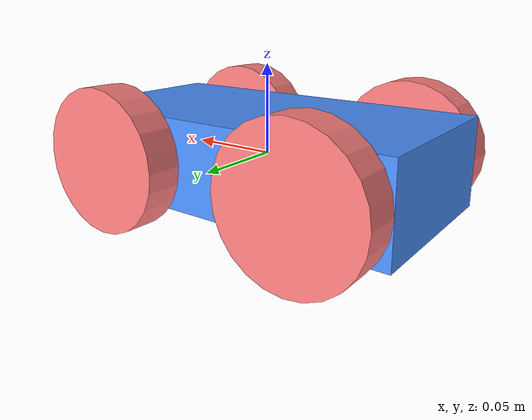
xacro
<?xml version="1.0"?>

<!--
Description: Xacro file that physically describe the Robot that will be interpreted by ROS. It's like a kinematic description of the Robot.
-->

<robot xmlns:xacro="http://www.ros.org/wiki/xacro" name="CleaningRobot">

  <!-- Color Macros: Initialize a pair of colors to be used in the different Robot parts. -->
  <material name="red">
    <color rgba="1.0 0.5 0.5 1.0"/>
  </material>
  <material name="blue">
    <color rgba="0.3 0.57 1. 1."/>
  </material>

  <!-- Body and Wheels Properties -->
  <xacro:property name="body_length" value="0.2" />
  <xacro:property name="body_width" value="0.1" />
  <xacro:property name="body_height" value="0.05" />
  <xacro:property name="ground_offset" value="0.04" />

  <xacro:property name="wheelbase" value="0.1" />
  <xacro:property name="wheel_radius" value="0.04" />
  <xacro:property name="wheel_length" value="0.02" />

  <!-- Base Link Definition -->
  <link name="base_link">
    <visual>
      <origin xyz="0 0 0"/>
      <geometry>
        <box size="${body_length} ${body_width} ${body_height}"/>
      </geometry>
      <material name="blue"/>
    </visual>
    <collision>
        <origin xyz="${wheelbase/2} 0 ${ground_offset+body_height/2}" />
        <geometry>
          <box size="${body_length} ${body_width} ${body_height}"/>
        </geometry>
    </collision>
  </link>

  <!-- FIXED JOINTS-->

  <!-- 1.a) Distance Sensor Left-->
  <link name="left_distance_sensor">
  </link>
  <joint name="base_to_left_distance_sensor" type="fixed">
    <parent link="base_link"/>
    <child link="left_distance_sensor"/>
    <origin xyz="0.1 0.02 0" rpy="0 0 0.3"/>
  </joint>

  <!-- 1.b) Distance Sensor Right-->
  <link name="right_distance_sensor">
  </link>
  <joint name="base_to_right_distance_sensor" type="fixed">
    <parent link="base_link"/>
    <child link="right_distance_sensor"/>
    <origin xyz="0.1 -0.02 0" rpy="0 0 -0.3"/>
  </joint>

  <!-- 2) Rotary Actuator -->
  <link name="rotary_link">
  </link>
  <joint name="linear_to_rotary_link" type="fixed">
    <parent link="linear_link"/>
    <child link="rotary_link"/>
    <origin xyz="0 -0.15 0" rpy="0 0 3.142"/>
  </joint>

  <!-- 3) Lidar -->
  <link name="lidar">
  </link>
  <joint name="base_to_lidar" type="fixed">
    <parent link="base_link"/>
    <child link="lidar"/>
    <origin xyz="0 0 0.06"/>
  </joint>

  <!-- 4) IMU-->
  <link name="imu">
  </link>
  <joint name="base_to_imu" type="fixed">
    <parent link="base_link"/>
    <child link="imu"/>
    <origin xyz="0 0 0"/>
  </joint>

  <!-- 5) GPS-->
  <link name="gps">
  </link>
  <joint name="base_to_gps" type="fixed">
    <parent link="base_link"/>
    <child link="gps"/>
    <origin xyz="0 0 0"/>
  </joint>

  <!-- 6.a) Front Left Wheel-->
  <link name="front_left_wheel">
    <visual>
      <geometry>
        <cylinder radius="${wheel_radius}" length="${wheel_length}"/>
      </geometry>
      <material name="red"/>
      <origin rpy="${pi/2} 0 0"/>
    </visual>
  </link>
  <joint name="base_to_front_left_wheel" type="fixed">
    <parent link="base_link"/>
    <child link="front_left_wheel"/>
    <origin xyz="0.06 0.06 0"/>
  </joint>

  <!-- 6.b) Front Right Wheel -->
  <link name="front_right_wheel">
    <visual>
      <geometry>
        <cylinder radius="${wheel_radius}" length="${wheel_length}"/>
      </geometry>
      <material name="red"/>
      <origin rpy="${pi/2} 0 0"/>
    </visual>
  </link>
  <joint name="base_to_front_right_wheel" type="fixed">
    <parent link="base_link"/>
    <child link="front_right_wheel"/>
    <origin xyz="0.06 -0.06 0"/>
  </joint>

  <!-- 6.c) Back Left Wheel-->
  <link name="back_left_wheel">
    <visual>
      <geometry>
        <cylinder radius="${wheel_radius}" length="${wheel_length}"/>
      </geometry>
      <material name="red"/>
      <origin rpy="${pi/2} 0 0"/>
    </visual>
  </link>
  <joint name="base_to_back_left_wheel" type="fixed">
    <parent link="base_link"/>
    <child link="back_left_wheel"/>
    <origin xyz="-0.06 0.06 0"/>
  </joint>

  <!-- 6.d) Back Right Wheel-->
  <link name="back_right_wheel">
    <visual>
      <geometry>
        <cylinder radius="${wheel_radius}" length="${wheel_length}"/>
      </geometry>
      <material name="red"/>
      <origin rpy="${pi/2} 0 0"/>
    </visual>
  </link>
  <joint name="base_to_back_right_wheel" type="fixed">
    <parent link="base_link"/>
    <child link="back_right_wheel"/>
    <origin xyz="-0.06 -0.06 0"/>
  </joint>

  <!-- DYNAMIC(CONTINUOUS) JOINTS-->
  <!-- 7) Linear Actuator -->
  <link name="linear_link">
  </link>
  <joint name="base_to_linear_link" type="continuous">
    <parent link="base_link"/>
    <child link="linear_link"/>
  </joint>

  <!-- 8) Camera Actuator -->
  <link name="camera_link">
  </link>
  <joint name="rotary_to_camera_link" type="continuous">
    <parent link="rotary_link"/>
    <child link="camera_link"/>
  </joint>

  <!-- 9) Navigation Link -->
  <link name="nav_link">
  </link>
  <joint name="base_to_nav_link" type="continuous">
    <parent link="base_link"/>
    <child link="nav_link"/>
  </joint>

</robot>
